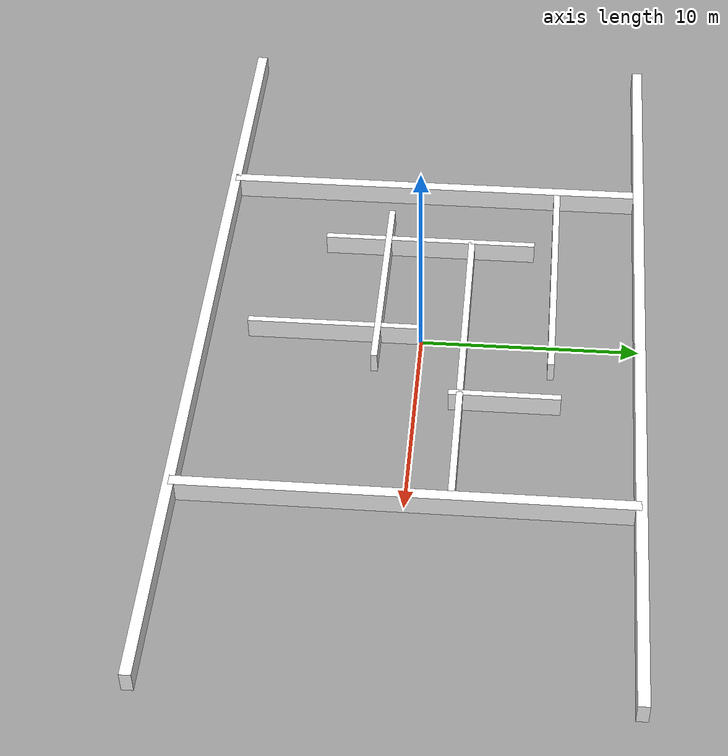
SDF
<?xml version="1.0" ?>
<sdf version="1.7">
  <world name="complex_maze">

    <!-- Ambient lighting -->
    <ambient>0.4 0.4 0.4 1</ambient>

    <!-- Simple ground plane -->
    <model name="ground">
      <static>true</static>
      <link name="link">
        <collision name="collision">
          <geometry>
            <plane><normal>0 0 1</normal><size>40 40</size></plane>
          </geometry>
        </collision>

        <visual name="visual">
          <geometry>
            <plane><normal>0 0 1</normal><size>40 40</size></plane>
          </geometry>
          <material>
            <ambient>0.6 0.6 0.6 1</ambient>
            <diffuse>0.6 0.6 0.6 1</diffuse>
          </material>
        </visual>
      </link>
    </model>

    <!--        OUTER WALLS            -->

    <model name="outer_north">
      <static>true</static>
      <link name="link">

        <collision name="collision">
          <geometry><box><size>40 0.5 1</size></box></geometry>
        </collision>

        <visual name="visual">
          <geometry><box><size>40 0.5 1</size></box></geometry>
          <material>
            <ambient>1 1 1 1</ambient>
            <diffuse>1 1 1 1</diffuse>
          </material>
        </visual>

      </link>
      <pose>0 10 0.5 0 0 0</pose>
    </model>

    <model name="outer_south">
      <static>true</static>
      <link name="link">

        <collision name="collision">
          <geometry><box><size>40 0.5 1</size></box></geometry>
        </collision>

        <visual name="visual">
          <geometry><box><size>40 0.5 1</size></box></geometry>
          <material>
            <ambient>1 1 1 1</ambient>
            <diffuse>1 1 1 1</diffuse>
          </material>
        </visual>

      </link>
      <pose>0 -10 0.5 0 0 0</pose>
    </model>

    <model name="outer_east">
      <static>true</static>
      <link name="link">

        <collision name="collision">
          <geometry><box><size>0.5 20 1</size></box></geometry>
        </collision>

        <visual name="visual">
          <geometry><box><size>0.5 20 1</size></box></geometry>
          <material>
            <ambient>1 1 1 1</ambient>
            <diffuse>1 1 1 1</diffuse>
          </material>
        </visual>

      </link>
      <pose>10 0 0.5 0 0 0</pose>
    </model>

    <model name="outer_west">
      <static>true</static>
      <link name="link">

        <collision name="collision">
          <geometry><box><size>0.5 20 1</size></box></geometry>
        </collision>

        <visual name="visual">
          <geometry><box><size>0.5 20 1</size></box></geometry>
          <material>
            <ambient>1 1 1 1</ambient>
            <diffuse>1 1 1 1</diffuse>
          </material>
        </visual>

      </link>
      <pose>-10 0 0.5 0 0 0</pose>
    </model>

    <!--      INTERNAL MAZE WALLS      -->

    <!-- Horizontal Wall 1 -->
    <model name="wall_h1">
      <static>true</static>
      <link name="link">

        <collision name="collision">
          <geometry><box><size>12 0.3 1</size></box></geometry>
        </collision>

        <visual name="visual">
          <geometry><box><size>12 0.3 1</size></box></geometry>
          <material>
            <ambient>1 1 1 1</ambient>
            <diffuse>1 1 1 1</diffuse>
          </material>
        </visual>

      </link>
      <pose>-4 6 0.5 0 0 0</pose>
    </model>

    <!-- Horizontal Wall 2 -->
    <model name="wall_h2">
      <static>true</static>
      <link name="link">

        <collision name="collision">
          <geometry><box><size>16 0.3 1</size></box></geometry>
        </collision>

        <visual name="visual">
          <geometry><box><size>16 0.3 1</size></box></geometry>
          <material>
            <ambient>1 1 1 1</ambient>
            <diffuse>1 1 1 1</diffuse>
          </material>
        </visual>

      </link>
      <pose>2 2 0.5 0 0 0</pose>
    </model>

    <!-- Horizontal Wall 3 -->
    <model name="wall_h3">
      <static>true</static>
      <link name="link">

        <collision name="collision">
          <geometry><box><size>10 0.3 1</size></box></geometry>
        </collision>

        <visual name="visual">
          <geometry><box><size>10 0.3 1</size></box></geometry>
          <material>
            <ambient>1 1 1 1</ambient>
            <diffuse>1 1 1 1</diffuse>
          </material>
        </visual>

      </link>
      <pose>-3 -2 0.5 0 0 0</pose>
    </model>

    <!-- Vertical Wall 1 -->
    <model name="wall_v1">
      <static>true</static>
      <link name="link">

        <collision name="collision">
          <geometry><box><size>0.3 10 1</size></box></geometry>
        </collision>

        <visual name="visual">
          <geometry><box><size>0.3 10 1</size></box></geometry>
          <material>
            <ambient>1 1 1 1</ambient>
            <diffuse>1 1 1 1</diffuse>
          </material>
        </visual>

      </link>
      <pose>-6 0 0.5 0 0 0</pose>
    </model>

    <!-- Vertical Wall 2 -->
    <model name="wall_v2">
      <static>true</static>
      <link name="link">

        <collision name="collision">
          <geometry><box><size>0.3 5 1</size></box></geometry>
        </collision>

        <visual name="visual">
          <geometry><box><size>0.3 5 1</size></box></geometry>
          <material>
            <ambient>1 1 1 1</ambient>
            <diffuse>1 1 1 1</diffuse>
          </material>
        </visual>

      </link>
      <pose>4 4 0.5 0 0 0</pose>
    </model>

    <!-- Vertical Wall 3 -->
    <model name="wall_v3">
      <static>true</static>
      <link name="link">

        <collision name="collision">
          <geometry><box><size>0.3 8 1</size></box></geometry>
        </collision>

        <visual name="visual">
          <geometry><box><size>0.3 8 1</size></box></geometry>
          <material>
            <ambient>1 1 1 1</ambient>
            <diffuse>1 1 1 1</diffuse>
          </material>
        </visual>

      </link>
      <pose>0 -4 0.5 0 0 0</pose>
    </model>

  </world>
</sdf>
